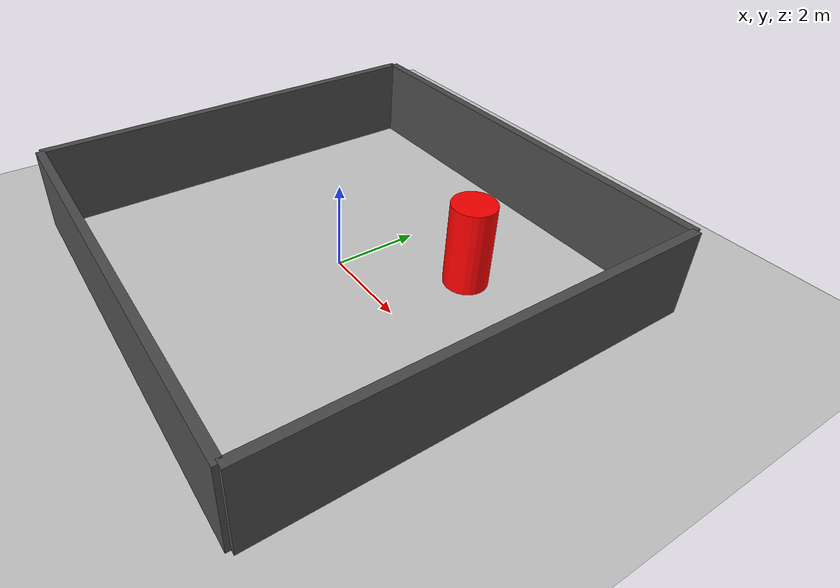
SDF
<sdf version='1.7'>
  <world name='house'>
    <physics name="1ms" type="ignored">
      <max_step_size>0.001</max_step_size>
      <real_time_factor>1.0</real_time_factor>
    </physics>
    <plugin filename="gz-sim-physics-system" name="gz::sim::systems::Physics"/>
    <plugin filename="gz-sim-user-commands-system" name="gz::sim::systems::UserCommands"/>
    <plugin filename="gz-sim-scene-broadcaster-system" name="gz::sim::systems::SceneBroadcaster"/>

    <light type="directional" name="sun">
      <cast_shadows>true</cast_shadows>
      <pose>0 0 10 0 0 0</pose>
      <diffuse>0.8 0.8 0.8 1</diffuse>
      <specular>0.2 0.2 0.2 1</specular>
      <direction>-0.5 0.1 -0.9</direction>
    </light>

    <model name="ground_plane">
      <static>true</static>
      <link name="link">
        <collision name="collision"><geometry><plane><normal>0 0 1</normal><size>100 100</size></plane></geometry></collision>
        <visual name="visual"><geometry><plane><normal>0 0 1</normal><size>100 100</size></plane></geometry><material><ambient>0.8 0.8 0.8 1</ambient><diffuse>0.8 0.8 0.8 1</diffuse></material></visual>
      </link>
    </model>

    <model name='wall_1'>
      <static>true</static>
      <pose>5 0 1 0 0 0</pose>
      <link name='link'><visual name='v'><geometry><box><size>0.2 10 2</size></box></geometry><material><ambient>0.3 0.3 0.3 1</ambient></material></visual><collision name='c'><geometry><box><size>0.2 10 2</size></box></geometry></collision></link>
    </model>
    <model name='wall_2'>
      <static>true</static>
      <pose>-5 0 1 0 0 0</pose>
      <link name='link'><visual name='v'><geometry><box><size>0.2 10 2</size></box></geometry><material><ambient>0.3 0.3 0.3 1</ambient></material></visual><collision name='c'><geometry><box><size>0.2 10 2</size></box></geometry></collision></link>
    </model>
    <model name='wall_3'>
      <static>true</static>
      <pose>0 5 1 0 0 0</pose>
      <link name='link'><visual name='v'><geometry><box><size>10 0.2 2</size></box></geometry><material><ambient>0.3 0.3 0.3 1</ambient></material></visual><collision name='c'><geometry><box><size>10 0.2 2</size></box></geometry></collision></link>
    </model>
    <model name='wall_4'>
      <static>true</static>
      <pose>0 -5 1 0 0 0</pose>
      <link name='link'><visual name='v'><geometry><box><size>10 0.2 2</size></box></geometry><material><ambient>0.3 0.3 0.3 1</ambient></material></visual><collision name='c'><geometry><box><size>10 0.2 2</size></box></geometry></collision></link>
    </model>

    <model name='pillar'>
      <static>true</static>
      <pose>2 2 1 0 0 0</pose>
      <link name='link'><visual name='v'><geometry><cylinder><radius>0.5</radius><length>2</length></cylinder></geometry><material><ambient>1 0 0 1</ambient></material></visual><collision name='c'><geometry><cylinder><radius>0.5</radius><length>2</length></cylinder></geometry></collision></link>
    </model>
  </world>
</sdf>
